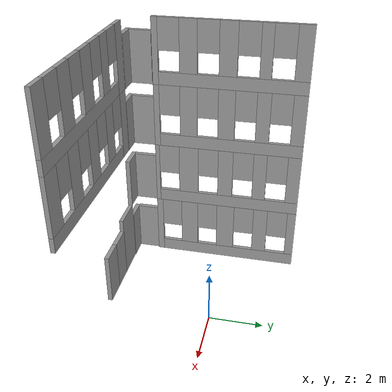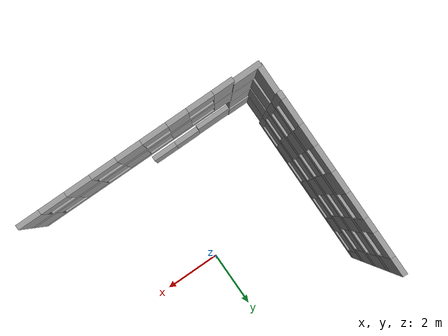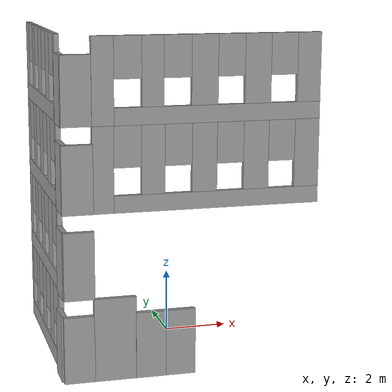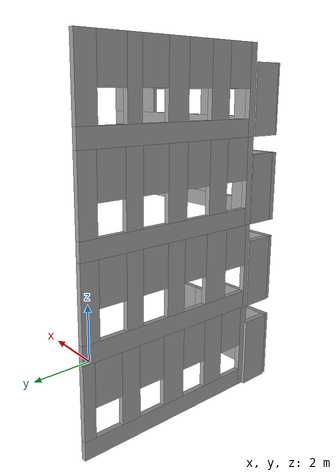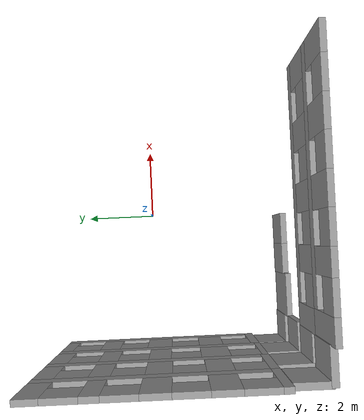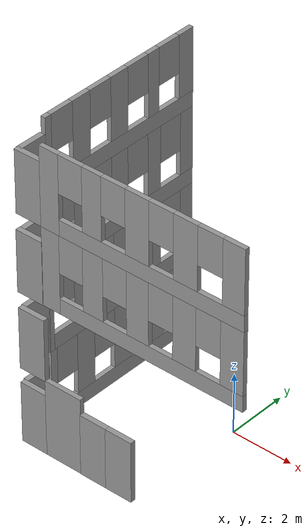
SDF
<sdf version="1.7">
 <model name="domitory">
  <pose>0.765108 -0.598707 0 0 -0 0</pose>
  <link name="Door_0">
   <collision name="Door_0_Collision">
    <geometry><box><size>0.9 0.17 2</size></box></geometry>
    <pose>0 0 1 0 -0 0</pose>
   </collision>
   <visual name="Door_0_Visual">
    <pose>0 0 1 0 -0 0</pose>
    <geometry><box><size>0.9 0.17 2</size></box></geometry>
    <material>
     <script><uri>file://media/materials/scripts/gazebo.material</uri><name>Gazebo/Grey</name></script>
    </material>
   </visual>
   <pose>-2.25511 -3.31129 0 0 -0 0</pose>
  </link>
  <link name="Door_1">
   <collision name="Door_1_Collision">
    <geometry><box><size>0.9 0.17 2</size></box></geometry>
    <pose>0 0 1 0 -0 0</pose>
   </collision>
   <visual name="Door_1_Visual">
    <pose>0 0 1 0 -0 0</pose>
    <geometry><box><size>0.9 0.17 2</size></box></geometry>
    <material>
     <script><uri>file://media/materials/scripts/gazebo.material</uri><name>Gazebo/Grey</name></script>
    </material>
   </visual>
   <pose>-1.36511 -3.31129 0 0 -0 0</pose>
  </link>
  <link name="Door_10">
   <collision name="Door_10_Collision">
    <geometry><box><size>0.9 0.17 2</size></box></geometry>
    <pose>0 0 1 0 -0 0</pose>
   </collision>
   <visual name="Door_10_Visual">
    <pose>0 0 1 0 -0 0</pose>
    <geometry><box><size>0.9 0.17 2</size></box></geometry>
    <material>
     <script><uri>file://media/materials/scripts/gazebo.material</uri><name>Gazebo/Grey</name></script>
    </material>
   </visual>
   <pose>-4.35997 -3.32416 2.5 0 -0 0</pose>
  </link>
  <link name="Door_11">
   <collision name="Door_11_Collision">
    <geometry><box><size>0.9 0.17 2</size></box></geometry>
    <pose>0 0 1 0 -0 0</pose>
   </collision>
   <visual name="Door_11_Visual">
    <pose>0 0 1 0 -0 0</pose>
    <geometry><box><size>0.9 0.17 2</size></box></geometry>
    <material>
     <script><uri>file://media/materials/scripts/gazebo.material</uri><name>Gazebo/Grey</name></script>
    </material>
   </visual>
   <pose>-4.75143 -2.81388 2.5 0 0 -1.56498</pose>
  </link>
  <link name="Door_14">
   <collision name="Door_14_Collision">
    <geometry><box><size>0.9 0.17 2</size></box></geometry>
    <pose>0 0 1 0 -0 0</pose>
   </collision>
   <visual name="Door_14_Visual">
    <pose>0 0 1 0 -0 0</pose>
    <geometry><box><size>0.9 0.17 2</size></box></geometry>
    <material>
     <script><uri>file://media/materials/scripts/gazebo.material</uri><name>Gazebo/Grey</name></script>
    </material>
   </visual>
   <pose>-4.372 -3.31425 5 0 -0 0</pose>
  </link>
  <link name="Door_15">
   <collision name="Door_15_Collision">
    <geometry><box><size>0.9 0.17 2</size></box></geometry>
    <pose>0 0 1 0 -0 0</pose>
   </collision>
   <visual name="Door_15_Visual">
    <pose>0 0 1 0 -0 0</pose>
    <geometry><box><size>0.9 0.17 2</size></box></geometry>
    <material>
     <script><uri>file://media/materials/scripts/gazebo.material</uri><name>Gazebo/Grey</name></script>
    </material>
   </visual>
   <pose>-4.73404 -2.82147 5 0 0 -1.55925</pose>
  </link>
  <link name="Door_18">
   <collision name="Door_18_Collision">
    <geometry><box><size>0.9 0.17 2</size></box></geometry>
    <pose>0 0 1 0 -0 0</pose>
   </collision>
   <visual name="Door_18_Visual">
    <pose>0 0 1 0 -0 0</pose>
    <geometry><box><size>0.9 0.17 2</size></box></geometry>
    <material>
     <script><uri>file://media/materials/scripts/gazebo.material</uri><name>Gazebo/Grey</name></script>
    </material>
   </visual>
   <pose>-4.36107 -3.29465 7.5 0 -0 0</pose>
  </link>
  <link name="Door_19">
   <collision name="Door_19_Collision">
    <geometry><box><size>0.9 0.17 2</size></box></geometry>
    <pose>0 0 1 0 -0 0</pose>
   </collision>
   <visual name="Door_19_Visual">
    <pose>0 0 1 0 -0 0</pose>
    <geometry><box><size>0.9 0.17 2</size></box></geometry>
    <material>
     <script><uri>file://media/materials/scripts/gazebo.material</uri><name>Gazebo/Grey</name></script>
    </material>
   </visual>
   <pose>-4.7454 -2.84964 7.5 0 -0 -1.5754</pose>
  </link>
  <link name="Door_6">
   <collision name="Door_6_Collision">
    <geometry><box><size>0.9 0.17 2</size></box></geometry>
    <pose>0 0 1 0 -0 0</pose>
   </collision>
   <visual name="Door_6_Visual">
    <pose>0 0 1 0 -0 0</pose>
    <geometry><box><size>0.9 0.17 2</size></box></geometry>
    <material>
     <script><uri>file://media/materials/scripts/gazebo.material</uri><name>Gazebo/Grey</name></script>
    </material>
   </visual>
   <pose>-4.37511 -3.30129 0 0 -0 0</pose>
  </link>
  <link name="Door_7">
   <collision name="Door_7_Collision">
    <geometry><box><size>0.9 0.17 2</size></box></geometry>
    <pose>0 0 1 0 -0 0</pose>
   </collision>
   <visual name="Door_7_Visual">
    <pose>0 0 1 0 -0 0</pose>
    <geometry><box><size>0.9 0.17 2</size></box></geometry>
    <material>
     <script><uri>file://media/materials/scripts/gazebo.material</uri><name>Gazebo/Grey</name></script>
    </material>
   </visual>
   <pose>-4.79009 -2.77129 0 0 0 -1.56404</pose>
  </link>
  <link name="Wall_0">
   <collision name="Wall_0_Collision">
    <geometry><box><size>1.25 0.15 2.5</size></box></geometry>
    <pose>0 0 1.25 0 -0 0</pose>
   </collision>
   <visual name="Wall_0_Visual">
    <pose>0 0 1.25 0 -0 0</pose>
    <geometry><box><size>1.25 0.15 2.5</size></box></geometry>
    <material>
     <script><uri>file://media/materials/scripts/gazebo.material</uri><name>Gazebo/Grey</name></script>
     <ambient>1 1 1 1</ambient>
    </material>
    <meta><layer>0</layer></meta>
   </visual>
   <pose>-3.31511 -3.31129 0 0 -0 0</pose>
  </link>
  <link name="Wall_10">
   <pose>-4.72386 0.491179 2.5 0 -0 1.5708</pose>
   <visual name="Wall_10_Visual_0">
    <pose>-2.79234 0 1.25 0 -0 0</pose>
    <geometry><box><size>0.165329 0.15 2.5</size></box></geometry>
    <material>
     <script><uri>file://media/materials/scripts/gazebo.material</uri><name>Gazebo/Grey</name></script>
     <ambient>1 1 1 1</ambient>
    </material>
    <meta><layer>1</layer></meta>
   </visual>
   <collision name="Wall_10_Collision_0">
    <geometry><box><size>0.165329 0.15 2.5</size></box></geometry>
    <pose>-2.79234 0 1.25 0 -0 0</pose>
   </collision>
   <visual name="Wall_10_Visual_1">
    <pose>0.082664 0 0.25 0 -0 0</pose>
    <geometry><box><size>5.58467 0.15 0.5</size></box></geometry>
    <material>
     <script><uri>file://media/materials/scripts/gazebo.material</uri><name>Gazebo/Grey</name></script>
     <ambient>1 1 1 1</ambient>
    </material>
    <meta><layer>1</layer></meta>
   </visual>
   <collision name="Wall_10_Collision_1">
    <geometry><box><size>5.58467 0.15 0.5</size></box></geometry>
    <pose>0.082664 0 0.25 0 -0 0</pose>
   </collision>
   <visual name="Wall_10_Visual_2">
    <pose>-1.52323 0 1.5 0 -0 0</pose>
    <geometry><box><size>0.772881 0.15 2</size></box></geometry>
    <material>
     <script><uri>file://media/materials/scripts/gazebo.material</uri><name>Gazebo/Grey</name></script>
     <ambient>1 1 1 1</ambient>
    </material>
    <meta><layer>1</layer></meta>
   </visual>
   <collision name="Wall_10_Collision_2">
    <geometry><box><size>0.772881 0.15 2</size></box></geometry>
    <pose>-1.52323 0 1.5 0 -0 0</pose>
   </collision>
   <visual name="Wall_10_Visual_3">
    <pose>-0.042872 0 1.5 0 -0 0</pose>
    <geometry><box><size>0.587836 0.15 2</size></box></geometry>
    <material>
     <script><uri>file://media/materials/scripts/gazebo.material</uri><name>Gazebo/Grey</name></script>
     <ambient>1 1 1 1</ambient>
    </material>
    <meta><layer>1</layer></meta>
   </visual>
   <collision name="Wall_10_Collision_3">
    <geometry><box><size>0.587836 0.15 2</size></box></geometry>
    <pose>-0.042872 0 1.5 0 -0 0</pose>
   </collision>
   <visual name="Wall_10_Visual_4">
    <pose>1.31027 0 1.5 0 -0 0</pose>
    <geometry><box><size>0.518445 0.15 2</size></box></geometry>
    <material>
     <script><uri>file://media/materials/scripts/gazebo.material</uri><name>Gazebo/Grey</name></script>
     <ambient>1 1 1 1</ambient>
    </material>
    <meta><layer>1</layer></meta>
   </visual>
   <collision name="Wall_10_Collision_4">
    <geometry><box><size>0.518445 0.15 2</size></box></geometry>
    <pose>1.31027 0 1.5 0 -0 0</pose>
   </collision>
   <visual name="Wall_10_Visual_5">
    <pose>2.62225 0 1.5 0 -0 0</pose>
    <geometry><box><size>0.505509 0.15 2</size></box></geometry>
    <material>
     <script><uri>file://media/materials/scripts/gazebo.material</uri><name>Gazebo/Grey</name></script>
     <ambient>1 1 1 1</ambient>
    </material>
    <meta><layer>1</layer></meta>
   </visual>
   <collision name="Wall_10_Collision_5">
    <geometry><box><size>0.505509 0.15 2</size></box></geometry>
    <pose>2.62225 0 1.5 0 -0 0</pose>
   </collision>
   <visual name="Wall_10_Visual_6">
    <pose>-2.30967 0 1.9 0 -0 0</pose>
    <geometry><box><size>0.8 0.15 1.2</size></box></geometry>
    <material>
     <script><uri>file://media/materials/scripts/gazebo.material</uri><name>Gazebo/Grey</name></script>
     <ambient>1 1 1 1</ambient>
    </material>
    <meta><layer>1</layer></meta>
   </visual>
   <collision name="Wall_10_Collision_6">
    <geometry><box><size>0.8 0.15 1.2</size></box></geometry>
    <pose>-2.30967 0 1.9 0 -0 0</pose>
   </collision>
   <visual name="Wall_10_Visual_7">
    <pose>-0.73679 0 1.9 0 -0 0</pose>
    <geometry><box><size>0.8 0.15 1.2</size></box></geometry>
    <material>
     <script><uri>file://media/materials/scripts/gazebo.material</uri><name>Gazebo/Grey</name></script>
     <ambient>1 1 1 1</ambient>
    </material>
    <meta><layer>1</layer></meta>
   </visual>
   <collision name="Wall_10_Collision_7">
    <geometry><box><size>0.8 0.15 1.2</size></box></geometry>
    <pose>-0.73679 0 1.9 0 -0 0</pose>
   </collision>
   <visual name="Wall_10_Visual_8">
    <pose>0.651047 0 1.9 0 -0 0</pose>
    <geometry><box><size>0.8 0.15 1.2</size></box></geometry>
    <material>
     <script><uri>file://media/materials/scripts/gazebo.material</uri><name>Gazebo/Grey</name></script>
     <ambient>1 1 1 1</ambient>
    </material>
    <meta><layer>1</layer></meta>
   </visual>
   <collision name="Wall_10_Collision_8">
    <geometry><box><size>0.8 0.15 1.2</size></box></geometry>
    <pose>0.651047 0 1.9 0 -0 0</pose>
   </collision>
   <visual name="Wall_10_Visual_9">
    <pose>1.96949 0 1.9 0 -0 0</pose>
    <geometry><box><size>0.8 0.15 1.2</size></box></geometry>
    <material>
     <script><uri>file://media/materials/scripts/gazebo.material</uri><name>Gazebo/Grey</name></script>
     <ambient>1 1 1 1</ambient>
    </material>
    <meta><layer>1</layer></meta>
   </visual>
   <collision name="Wall_10_Collision_9">
    <geometry><box><size>0.8 0.15 1.2</size></box></geometry>
    <pose>1.96949 0 1.9 0 -0 0</pose>
   </collision>
  </link>
  <link name="Wall_13">
   <pose>-0.565108 -3.31129 5 0 -0 0</pose>
   <visual name="Wall_13_Visual_0">
    <pose>-3.06685 0 1.25 0 -0 0</pose>
    <geometry><box><size>0.616289 0.15 2.5</size></box></geometry>
    <material>
     <script><uri>file://media/materials/scripts/gazebo.material</uri><name>Gazebo/Grey</name></script>
     <ambient>1 1 1 1</ambient>
    </material>
    <meta><layer>2</layer></meta>
   </visual>
   <collision name="Wall_13_Collision_0">
    <geometry><box><size>0.616289 0.15 2.5</size></box></geometry>
    <pose>-3.06685 0 1.25 0 -0 0</pose>
   </collision>
   <visual name="Wall_13_Visual_1">
    <pose>0.308145 0 0.25 0 -0 0</pose>
    <geometry><box><size>6.13371 0.15 0.5</size></box></geometry>
    <material>
     <script><uri>file://media/materials/scripts/gazebo.material</uri><name>Gazebo/Grey</name></script>
     <ambient>1 1 1 1</ambient>
    </material>
    <meta><layer>2</layer></meta>
   </visual>
   <collision name="Wall_13_Collision_1">
    <geometry><box><size>6.13371 0.15 0.5</size></box></geometry>
    <pose>0.308145 0 0.25 0 -0 0</pose>
   </collision>
   <visual name="Wall_13_Visual_2">
    <pose>-1.61451 0 1.5 0 -0 0</pose>
    <geometry><box><size>0.688404 0.15 2</size></box></geometry>
    <material>
     <script><uri>file://media/materials/scripts/gazebo.material</uri><name>Gazebo/Grey</name></script>
     <ambient>1 1 1 1</ambient>
    </material>
    <meta><layer>2</layer></meta>
   </visual>
   <collision name="Wall_13_Collision_2">
    <geometry><box><size>0.688404 0.15 2</size></box></geometry>
    <pose>-1.61451 0 1.5 0 -0 0</pose>
   </collision>
   <visual name="Wall_13_Visual_3">
    <pose>-0.100962 0 1.5 0 -0 0</pose>
    <geometry><box><size>0.738688 0.15 2</size></box></geometry>
    <material>
     <script><uri>file://media/materials/scripts/gazebo.material</uri><name>Gazebo/Grey</name></script>
     <ambient>1 1 1 1</ambient>
    </material>
    <meta><layer>2</layer></meta>
   </visual>
   <collision name="Wall_13_Collision_3">
    <geometry><box><size>0.738688 0.15 2</size></box></geometry>
    <pose>-0.100962 0 1.5 0 -0 0</pose>
   </collision>
   <visual name="Wall_13_Visual_4">
    <pose>1.44778 0 1.5 0 -0 0</pose>
    <geometry><box><size>0.758802 0.15 2</size></box></geometry>
    <material>
     <script><uri>file://media/materials/scripts/gazebo.material</uri><name>Gazebo/Grey</name></script>
     <ambient>1 1 1 1</ambient>
    </material>
    <meta><layer>2</layer></meta>
   </visual>
   <collision name="Wall_13_Collision_4">
    <geometry><box><size>0.758802 0.15 2</size></box></geometry>
    <pose>1.44778 0 1.5 0 -0 0</pose>
   </collision>
   <visual name="Wall_13_Visual_5">
    <pose>3.00109 0 1.5 0 -0 0</pose>
    <geometry><box><size>0.747816 0.15 2</size></box></geometry>
    <material>
     <script><uri>file://media/materials/scripts/gazebo.material</uri><name>Gazebo/Grey</name></script>
     <ambient>1 1 1 1</ambient>
    </material>
    <meta><layer>2</layer></meta>
   </visual>
   <collision name="Wall_13_Collision_5">
    <geometry><box><size>0.747816 0.15 2</size></box></geometry>
    <pose>3.00109 0 1.5 0 -0 0</pose>
   </collision>
   <visual name="Wall_13_Visual_6">
    <pose>-2.35871 0 1.9 0 -0 0</pose>
    <geometry><box><size>0.8 0.15 1.2</size></box></geometry>
    <material>
     <script><uri>file://media/materials/scripts/gazebo.material</uri><name>Gazebo/Grey</name></script>
     <ambient>1 1 1 1</ambient>
    </material>
    <meta><layer>2</layer></meta>
   </visual>
   <collision name="Wall_13_Collision_6">
    <geometry><box><size>0.8 0.15 1.2</size></box></geometry>
    <pose>-2.35871 0 1.9 0 -0 0</pose>
   </collision>
   <visual name="Wall_13_Visual_7">
    <pose>-0.870307 0 1.9 0 -0 0</pose>
    <geometry><box><size>0.8 0.15 1.2</size></box></geometry>
    <material>
     <script><uri>file://media/materials/scripts/gazebo.material</uri><name>Gazebo/Grey</name></script>
     <ambient>1 1 1 1</ambient>
    </material>
    <meta><layer>2</layer></meta>
   </visual>
   <collision name="Wall_13_Collision_7">
    <geometry><box><size>0.8 0.15 1.2</size></box></geometry>
    <pose>-0.870307 0 1.9 0 -0 0</pose>
   </collision>
   <visual name="Wall_13_Visual_8">
    <pose>0.668382 0 1.9 0 -0 0</pose>
    <geometry><box><size>0.8 0.15 1.2</size></box></geometry>
    <material>
     <script><uri>file://media/materials/scripts/gazebo.material</uri><name>Gazebo/Grey</name></script>
     <ambient>1 1 1 1</ambient>
    </material>
    <meta><layer>2</layer></meta>
   </visual>
   <collision name="Wall_13_Collision_8">
    <geometry><box><size>0.8 0.15 1.2</size></box></geometry>
    <pose>0.668382 0 1.9 0 -0 0</pose>
   </collision>
   <visual name="Wall_13_Visual_9">
    <pose>2.22718 0 1.9 0 -0 0</pose>
    <geometry><box><size>0.8 0.15 1.2</size></box></geometry>
    <material>
     <script><uri>file://media/materials/scripts/gazebo.material</uri><name>Gazebo/Grey</name></script>
     <ambient>1 1 1 1</ambient>
    </material>
    <meta><layer>2</layer></meta>
   </visual>
   <collision name="Wall_13_Collision_9">
    <geometry><box><size>0.8 0.15 1.2</size></box></geometry>
    <pose>2.22718 0 1.9 0 -0 0</pose>
   </collision>
  </link>
  <link name="Wall_15">
   <pose>-4.72386 0.491179 5 0 -0 1.5708</pose>
   <visual name="Wall_15_Visual_0">
    <pose>-2.76355 0 1.25 0 -0 0</pose>
    <geometry><box><size>0.222893 0.15 2.5</size></box></geometry>
    <material>
     <script><uri>file://media/materials/scripts/gazebo.material</uri><name>Gazebo/Grey</name></script>
     <ambient>1 1 1 1</ambient>
    </material>
    <meta><layer>2</layer></meta>
   </visual>
   <collision name="Wall_15_Collision_0">
    <geometry><box><size>0.222893 0.15 2.5</size></box></geometry>
    <pose>-2.76355 0 1.25 0 -0 0</pose>
   </collision>
   <visual name="Wall_15_Visual_1">
    <pose>0.111447 0 0.25 0 -0 0</pose>
    <geometry><box><size>5.52711 0.15 0.5</size></box></geometry>
    <material>
     <script><uri>file://media/materials/scripts/gazebo.material</uri><name>Gazebo/Grey</name></script>
     <ambient>1 1 1 1</ambient>
    </material>
    <meta><layer>2</layer></meta>
   </visual>
   <collision name="Wall_15_Collision_1">
    <geometry><box><size>5.52711 0.15 0.5</size></box></geometry>
    <pose>0.111447 0 0.25 0 -0 0</pose>
   </collision>
   <visual name="Wall_15_Visual_2">
    <pose>-1.51794 0 1.5 0 -0 0</pose>
    <geometry><box><size>0.668331 0.15 2</size></box></geometry>
    <material>
     <script><uri>file://media/materials/scripts/gazebo.material</uri><name>Gazebo/Grey</name></script>
     <ambient>1 1 1 1</ambient>
    </material>
    <meta><layer>2</layer></meta>
   </visual>
   <collision name="Wall_15_Collision_2">
    <geometry><box><size>0.668331 0.15 2</size></box></geometry>
    <pose>-1.51794 0 1.5 0 -0 0</pose>
   </collision>
   <visual name="Wall_15_Visual_3">
    <pose>-0.064905 0 1.5 0 -0 0</pose>
    <geometry><box><size>0.637741 0.15 2</size></box></geometry>
    <material>
     <script><uri>file://media/materials/scripts/gazebo.material</uri><name>Gazebo/Grey</name></script>
     <ambient>1 1 1 1</ambient>
    </material>
    <meta><layer>2</layer></meta>
   </visual>
   <collision name="Wall_15_Collision_3">
    <geometry><box><size>0.637741 0.15 2</size></box></geometry>
    <pose>-0.064905 0 1.5 0 -0 0</pose>
   </collision>
   <visual name="Wall_15_Visual_4">
    <pose>1.31166 0 1.5 0 -0 0</pose>
    <geometry><box><size>0.51538 0.15 2</size></box></geometry>
    <material>
     <script><uri>file://media/materials/scripts/gazebo.material</uri><name>Gazebo/Grey</name></script>
     <ambient>1 1 1 1</ambient>
    </material>
    <meta><layer>2</layer></meta>
   </visual>
   <collision name="Wall_15_Collision_4">
    <geometry><box><size>0.51538 0.15 2</size></box></geometry>
    <pose>1.31166 0 1.5 0 -0 0</pose>
   </collision>
   <visual name="Wall_15_Visual_5">
    <pose>2.62217 0 1.5 0 -0 0</pose>
    <geometry><box><size>0.505655 0.15 2</size></box></geometry>
    <material>
     <script><uri>file://media/materials/scripts/gazebo.material</uri><name>Gazebo/Grey</name></script>
     <ambient>1 1 1 1</ambient>
    </material>
    <meta><layer>2</layer></meta>
   </visual>
   <collision name="Wall_15_Collision_5">
    <geometry><box><size>0.505655 0.15 2</size></box></geometry>
    <pose>2.62217 0 1.5 0 -0 0</pose>
   </collision>
   <visual name="Wall_15_Visual_6">
    <pose>-2.25211 0 1.9 0 -0 0</pose>
    <geometry><box><size>0.8 0.15 1.2</size></box></geometry>
    <material>
     <script><uri>file://media/materials/scripts/gazebo.material</uri><name>Gazebo/Grey</name></script>
     <ambient>1 1 1 1</ambient>
    </material>
    <meta><layer>2</layer></meta>
   </visual>
   <collision name="Wall_15_Collision_6">
    <geometry><box><size>0.8 0.15 1.2</size></box></geometry>
    <pose>-2.25211 0 1.9 0 -0 0</pose>
   </collision>
   <visual name="Wall_15_Visual_7">
    <pose>-0.783776 0 1.9 0 -0 0</pose>
    <geometry><box><size>0.8 0.15 1.2</size></box></geometry>
    <material>
     <script><uri>file://media/materials/scripts/gazebo.material</uri><name>Gazebo/Grey</name></script>
     <ambient>1 1 1 1</ambient>
    </material>
    <meta><layer>2</layer></meta>
   </visual>
   <collision name="Wall_15_Collision_7">
    <geometry><box><size>0.8 0.15 1.2</size></box></geometry>
    <pose>-0.783776 0 1.9 0 -0 0</pose>
   </collision>
   <visual name="Wall_15_Visual_8">
    <pose>0.653965 0 1.9 0 -0 0</pose>
    <geometry><box><size>0.8 0.15 1.2</size></box></geometry>
    <material>
     <script><uri>file://media/materials/scripts/gazebo.material</uri><name>Gazebo/Grey</name></script>
     <ambient>1 1 1 1</ambient>
    </material>
    <meta><layer>2</layer></meta>
   </visual>
   <collision name="Wall_15_Collision_8">
    <geometry><box><size>0.8 0.15 1.2</size></box></geometry>
    <pose>0.653965 0 1.9 0 -0 0</pose>
   </collision>
   <visual name="Wall_15_Visual_9">
    <pose>1.96934 0 1.9 0 -0 0</pose>
    <geometry><box><size>0.8 0.15 1.2</size></box></geometry>
    <material>
     <script><uri>file://media/materials/scripts/gazebo.material</uri><name>Gazebo/Grey</name></script>
     <ambient>1 1 1 1</ambient>
    </material>
    <meta><layer>2</layer></meta>
   </visual>
   <collision name="Wall_15_Collision_9">
    <geometry><box><size>0.8 0.15 1.2</size></box></geometry>
    <pose>1.96934 0 1.9 0 -0 0</pose>
   </collision>
  </link>
  <link name="Wall_18">
   <pose>-0.565108 -3.31129 7.5 0 -0 0</pose>
   <visual name="Wall_18_Visual_0">
    <pose>-3.0564 0 1.25 0 -0 0</pose>
    <geometry><box><size>0.637196 0.15 2.5</size></box></geometry>
    <material>
     <script><uri>file://media/materials/scripts/gazebo.material</uri><name>Gazebo/Grey</name></script>
     <ambient>1 1 1 1</ambient>
    </material>
    <meta><layer>3</layer></meta>
   </visual>
   <collision name="Wall_18_Collision_0">
    <geometry><box><size>0.637196 0.15 2.5</size></box></geometry>
    <pose>-3.0564 0 1.25 0 -0 0</pose>
   </collision>
   <visual name="Wall_18_Visual_1">
    <pose>0.318598 0 0.25 0 -0 0</pose>
    <geometry><box><size>6.1128 0.15 0.5</size></box></geometry>
    <material>
     <script><uri>file://media/materials/scripts/gazebo.material</uri><name>Gazebo/Grey</name></script>
     <ambient>1 1 1 1</ambient>
    </material>
    <meta><layer>3</layer></meta>
   </visual>
   <collision name="Wall_18_Collision_1">
    <geometry><box><size>6.1128 0.15 0.5</size></box></geometry>
    <pose>0.318598 0 0.25 0 -0 0</pose>
   </collision>
   <visual name="Wall_18_Visual_2">
    <pose>-1.61668 0 1.5 0 -0 0</pose>
    <geometry><box><size>0.642241 0.15 2</size></box></geometry>
    <material>
     <script><uri>file://media/materials/scripts/gazebo.material</uri><name>Gazebo/Grey</name></script>
     <ambient>1 1 1 1</ambient>
    </material>
    <meta><layer>3</layer></meta>
   </visual>
   <collision name="Wall_18_Collision_2">
    <geometry><box><size>0.642241 0.15 2</size></box></geometry>
    <pose>-1.61668 0 1.5 0 -0 0</pose>
   </collision>
   <visual name="Wall_18_Visual_3">
    <pose>-0.104656 0 1.5 0 -0 0</pose>
    <geometry><box><size>0.781813 0.15 2</size></box></geometry>
    <material>
     <script><uri>file://media/materials/scripts/gazebo.material</uri><name>Gazebo/Grey</name></script>
     <ambient>1 1 1 1</ambient>
    </material>
    <meta><layer>3</layer></meta>
   </visual>
   <collision name="Wall_18_Collision_3">
    <geometry><box><size>0.781813 0.15 2</size></box></geometry>
    <pose>-0.104656 0 1.5 0 -0 0</pose>
   </collision>
   <visual name="Wall_18_Visual_4">
    <pose>1.47716 0 1.5 0 -0 0</pose>
    <geometry><box><size>0.781813 0.15 2</size></box></geometry>
    <material>
     <script><uri>file://media/materials/scripts/gazebo.material</uri><name>Gazebo/Grey</name></script>
     <ambient>1 1 1 1</ambient>
    </material>
    <meta><layer>3</layer></meta>
   </visual>
   <collision name="Wall_18_Collision_4">
    <geometry><box><size>0.781813 0.15 2</size></box></geometry>
    <pose>1.47716 0 1.5 0 -0 0</pose>
   </collision>
   <visual name="Wall_18_Visual_5">
    <pose>3.02153 0 1.5 0 -0 0</pose>
    <geometry><box><size>0.706936 0.15 2</size></box></geometry>
    <material>
     <script><uri>file://media/materials/scripts/gazebo.material</uri><name>Gazebo/Grey</name></script>
     <ambient>1 1 1 1</ambient>
    </material>
    <meta><layer>3</layer></meta>
   </visual>
   <collision name="Wall_18_Collision_5">
    <geometry><box><size>0.706936 0.15 2</size></box></geometry>
    <pose>3.02153 0 1.5 0 -0 0</pose>
   </collision>
   <visual name="Wall_18_Visual_6">
    <pose>-2.3378 0 1.9 0 -0 0</pose>
    <geometry><box><size>0.8 0.15 1.2</size></box></geometry>
    <material>
     <script><uri>file://media/materials/scripts/gazebo.material</uri><name>Gazebo/Grey</name></script>
     <ambient>1 1 1 1</ambient>
    </material>
    <meta><layer>3</layer></meta>
   </visual>
   <collision name="Wall_18_Collision_6">
    <geometry><box><size>0.8 0.15 1.2</size></box></geometry>
    <pose>-2.3378 0 1.9 0 -0 0</pose>
   </collision>
   <visual name="Wall_18_Visual_7">
    <pose>-0.895563 0 1.9 0 -0 0</pose>
    <geometry><box><size>0.8 0.15 1.2</size></box></geometry>
    <material>
     <script><uri>file://media/materials/scripts/gazebo.material</uri><name>Gazebo/Grey</name></script>
     <ambient>1 1 1 1</ambient>
    </material>
    <meta><layer>3</layer></meta>
   </visual>
   <collision name="Wall_18_Collision_7">
    <geometry><box><size>0.8 0.15 1.2</size></box></geometry>
    <pose>-0.895563 0 1.9 0 -0 0</pose>
   </collision>
   <visual name="Wall_18_Visual_8">
    <pose>0.686251 0 1.9 0 -0 0</pose>
    <geometry><box><size>0.8 0.15 1.2</size></box></geometry>
    <material>
     <script><uri>file://media/materials/scripts/gazebo.material</uri><name>Gazebo/Grey</name></script>
     <ambient>1 1 1 1</ambient>
    </material>
    <meta><layer>3</layer></meta>
   </visual>
   <collision name="Wall_18_Collision_8">
    <geometry><box><size>0.8 0.15 1.2</size></box></geometry>
    <pose>0.686251 0 1.9 0 -0 0</pose>
   </collision>
   <visual name="Wall_18_Visual_9">
    <pose>2.26806 0 1.9 0 -0 0</pose>
    <geometry><box><size>0.8 0.15 1.2</size></box></geometry>
    <material>
     <script><uri>file://media/materials/scripts/gazebo.material</uri><name>Gazebo/Grey</name></script>
     <ambient>1 1 1 1</ambient>
    </material>
    <meta><layer>3</layer></meta>
   </visual>
   <collision name="Wall_18_Collision_9">
    <geometry><box><size>0.8 0.15 1.2</size></box></geometry>
    <pose>2.26806 0 1.9 0 -0 0</pose>
   </collision>
  </link>
  <link name="Wall_20">
   <pose>-4.72386 0.491179 7.5 0 -0 1.5708</pose>
   <visual name="Wall_20_Visual_0">
    <pose>-2.76322 0 1.25 0 -0 0</pose>
    <geometry><box><size>0.223554 0.15 2.5</size></box></geometry>
    <material>
     <script><uri>file://media/materials/scripts/gazebo.material</uri><name>Gazebo/Grey</name></script>
     <ambient>1 1 1 1</ambient>
    </material>
    <meta><layer>3</layer></meta>
   </visual>
   <collision name="Wall_20_Collision_0">
    <geometry><box><size>0.223554 0.15 2.5</size></box></geometry>
    <pose>-2.76322 0 1.25 0 -0 0</pose>
   </collision>
   <visual name="Wall_20_Visual_1">
    <pose>0.111777 0 0.25 0 -0 0</pose>
    <geometry><box><size>5.52645 0.15 0.5</size></box></geometry>
    <material>
     <script><uri>file://media/materials/scripts/gazebo.material</uri><name>Gazebo/Grey</name></script>
     <ambient>1 1 1 1</ambient>
    </material>
    <meta><layer>3</layer></meta>
   </visual>
   <collision name="Wall_20_Collision_1">
    <geometry><box><size>5.52645 0.15 0.5</size></box></geometry>
    <pose>0.111777 0 0.25 0 -0 0</pose>
   </collision>
   <visual name="Wall_20_Visual_2">
    <pose>-1.51869 0 1.5 0 -0 0</pose>
    <geometry><box><size>0.665503 0.15 2</size></box></geometry>
    <material>
     <script><uri>file://media/materials/scripts/gazebo.material</uri><name>Gazebo/Grey</name></script>
     <ambient>1 1 1 1</ambient>
    </material>
    <meta><layer>3</layer></meta>
   </visual>
   <collision name="Wall_20_Collision_2">
    <geometry><box><size>0.665503 0.15 2</size></box></geometry>
    <pose>-1.51869 0 1.5 0 -0 0</pose>
   </collision>
   <visual name="Wall_20_Visual_3">
    <pose>-0.053191 0 1.5 0 -0 0</pose>
    <geometry><box><size>0.665503 0.15 2</size></box></geometry>
    <material>
     <script><uri>file://media/materials/scripts/gazebo.material</uri><name>Gazebo/Grey</name></script>
     <ambient>1 1 1 1</ambient>
    </material>
    <meta><layer>3</layer></meta>
   </visual>
   <collision name="Wall_20_Collision_3">
    <geometry><box><size>0.665503 0.15 2</size></box></geometry>
    <pose>-0.053191 0 1.5 0 -0 0</pose>
   </collision>
   <visual name="Wall_20_Visual_4">
    <pose>1.296 0 1.5 0 -0 0</pose>
    <geometry><box><size>0.432884 0.15 2</size></box></geometry>
    <material>
     <script><uri>file://media/materials/scripts/gazebo.material</uri><name>Gazebo/Grey</name></script>
     <ambient>1 1 1 1</ambient>
    </material>
    <meta><layer>3</layer></meta>
   </visual>
   <collision name="Wall_20_Collision_4">
    <geometry><box><size>0.432884 0.15 2</size></box></geometry>
    <pose>1.296 0 1.5 0 -0 0</pose>
   </collision>
   <visual name="Wall_20_Visual_5">
    <pose>2.59372 0 1.5 0 -0 0</pose>
    <geometry><box><size>0.562556 0.15 2</size></box></geometry>
    <material>
     <script><uri>file://media/materials/scripts/gazebo.material</uri><name>Gazebo/Grey</name></script>
     <ambient>1 1 1 1</ambient>
    </material>
    <meta><layer>3</layer></meta>
   </visual>
   <collision name="Wall_20_Collision_5">
    <geometry><box><size>0.562556 0.15 2</size></box></geometry>
    <pose>2.59372 0 1.5 0 -0 0</pose>
   </collision>
   <visual name="Wall_20_Visual_6">
    <pose>-2.25145 0 1.9 0 -0 0</pose>
    <geometry><box><size>0.8 0.15 1.2</size></box></geometry>
    <material>
     <script><uri>file://media/materials/scripts/gazebo.material</uri><name>Gazebo/Grey</name></script>
     <ambient>1 1 1 1</ambient>
    </material>
    <meta><layer>3</layer></meta>
   </visual>
   <collision name="Wall_20_Collision_6">
    <geometry><box><size>0.8 0.15 1.2</size></box></geometry>
    <pose>-2.25145 0 1.9 0 -0 0</pose>
   </collision>
   <visual name="Wall_20_Visual_7">
    <pose>-0.785943 0 1.9 0 -0 0</pose>
    <geometry><box><size>0.8 0.15 1.2</size></box></geometry>
    <material>
     <script><uri>file://media/materials/scripts/gazebo.material</uri><name>Gazebo/Grey</name></script>
     <ambient>1 1 1 1</ambient>
    </material>
    <meta><layer>3</layer></meta>
   </visual>
   <collision name="Wall_20_Collision_7">
    <geometry><box><size>0.8 0.15 1.2</size></box></geometry>
    <pose>-0.785943 0 1.9 0 -0 0</pose>
   </collision>
   <visual name="Wall_20_Visual_8">
    <pose>0.679561 0 1.9 0 -0 0</pose>
    <geometry><box><size>0.8 0.15 1.2</size></box></geometry>
    <material>
     <script><uri>file://media/materials/scripts/gazebo.material</uri><name>Gazebo/Grey</name></script>
     <ambient>1 1 1 1</ambient>
    </material>
    <meta><layer>3</layer></meta>
   </visual>
   <collision name="Wall_20_Collision_8">
    <geometry><box><size>0.8 0.15 1.2</size></box></geometry>
    <pose>0.679561 0 1.9 0 -0 0</pose>
   </collision>
   <visual name="Wall_20_Visual_9">
    <pose>1.91244 0 1.9 0 -0 0</pose>
    <geometry><box><size>0.8 0.15 1.2</size></box></geometry>
    <material>
     <script><uri>file://media/materials/scripts/gazebo.material</uri><name>Gazebo/Grey</name></script>
     <ambient>1 1 1 1</ambient>
    </material>
    <meta><layer>3</layer></meta>
   </visual>
   <collision name="Wall_20_Collision_9">
    <geometry><box><size>0.8 0.15 1.2</size></box></geometry>
    <pose>1.91244 0 1.9 0 -0 0</pose>
   </collision>
  </link>
  <link name="Wall_4">
   <pose>-4.72386 0.491179 0 0 -0 1.5708</pose>
   <visual name="Wall_4_Visual_0">
    <pose>-2.75105 0 1.25 0 -0 0</pose>
    <geometry><box><size>0.247902 0.15 2.5</size></box></geometry>
    <material>
     <script><uri>file://media/materials/scripts/gazebo.material</uri><name>Gazebo/Grey</name></script>
     <ambient>1 1 1 1</ambient>
    </material>
    <meta><layer>0</layer></meta>
   </visual>
   <collision name="Wall_4_Collision_0">
    <geometry><box><size>0.247902 0.15 2.5</size></box></geometry>
    <pose>-2.75105 0 1.25 0 -0 0</pose>
   </collision>
   <visual name="Wall_4_Visual_1">
    <pose>0.123951 0 0.25 0 -0 0</pose>
    <geometry><box><size>5.5021 0.15 0.5</size></box></geometry>
    <material>
     <script><uri>file://media/materials/scripts/gazebo.material</uri><name>Gazebo/Grey</name></script>
     <ambient>1 1 1 1</ambient>
    </material>
    <meta><layer>0</layer></meta>
   </visual>
   <collision name="Wall_4_Collision_1">
    <geometry><box><size>5.5021 0.15 0.5</size></box></geometry>
    <pose>0.123951 0 0.25 0 -0 0</pose>
   </collision>
   <visual name="Wall_4_Visual_2">
    <pose>-1.4829 0 1.5 0 -0 0</pose>
    <geometry><box><size>0.688404 0.15 2</size></box></geometry>
    <material>
     <script><uri>file://media/materials/scripts/gazebo.material</uri><name>Gazebo/Grey</name></script>
     <ambient>1 1 1 1</ambient>
    </material>
    <meta><layer>0</layer></meta>
   </visual>
   <collision name="Wall_4_Collision_2">
    <geometry><box><size>0.688404 0.15 2</size></box></geometry>
    <pose>-1.4829 0 1.5 0 -0 0</pose>
   </collision>
   <visual name="Wall_4_Visual_3">
    <pose>0.015565 0 1.5 0 -0 0</pose>
    <geometry><box><size>0.708518 0.15 2</size></box></geometry>
    <material>
     <script><uri>file://media/materials/scripts/gazebo.material</uri><name>Gazebo/Grey</name></script>
     <ambient>1 1 1 1</ambient>
    </material>
    <meta><layer>0</layer></meta>
   </visual>
   <collision name="Wall_4_Collision_3">
    <geometry><box><size>0.708518 0.15 2</size></box></geometry>
    <pose>0.015565 0 1.5 0 -0 0</pose>
   </collision>
   <visual name="Wall_4_Visual_4">
    <pose>1.45368 0 1.5 0 -0 0</pose>
    <geometry><box><size>0.567723 0.15 2</size></box></geometry>
    <material>
     <script><uri>file://media/materials/scripts/gazebo.material</uri><name>Gazebo/Grey</name></script>
     <ambient>1 1 1 1</ambient>
    </material>
    <meta><layer>0</layer></meta>
   </visual>
   <collision name="Wall_4_Collision_4">
    <geometry><box><size>0.567723 0.15 2</size></box></geometry>
    <pose>1.45368 0 1.5 0 -0 0</pose>
   </collision>
   <visual name="Wall_4_Visual_5">
    <pose>2.70627 0 1.5 0 -0 0</pose>
    <geometry><box><size>0.337453 0.15 2</size></box></geometry>
    <material>
     <script><uri>file://media/materials/scripts/gazebo.material</uri><name>Gazebo/Grey</name></script>
     <ambient>1 1 1 1</ambient>
    </material>
    <meta><layer>0</layer></meta>
   </visual>
   <collision name="Wall_4_Collision_5">
    <geometry><box><size>0.337453 0.15 2</size></box></geometry>
    <pose>2.70627 0 1.5 0 -0 0</pose>
   </collision>
   <visual name="Wall_4_Visual_6">
    <pose>-2.2271 0 1.9 0 -0 0</pose>
    <geometry><box><size>0.8 0.15 1.2</size></box></geometry>
    <material>
     <script><uri>file://media/materials/scripts/gazebo.material</uri><name>Gazebo/Grey</name></script>
     <ambient>1 1 1 1</ambient>
    </material>
    <meta><layer>0</layer></meta>
   </visual>
   <collision name="Wall_4_Collision_6">
    <geometry><box><size>0.8 0.15 1.2</size></box></geometry>
    <pose>-2.2271 0 1.9 0 -0 0</pose>
   </collision>
   <visual name="Wall_4_Visual_7">
    <pose>-0.738694 0 1.9 0 -0 0</pose>
    <geometry><box><size>0.8 0.15 1.2</size></box></geometry>
    <material>
     <script><uri>file://media/materials/scripts/gazebo.material</uri><name>Gazebo/Grey</name></script>
     <ambient>1 1 1 1</ambient>
    </material>
    <meta><layer>0</layer></meta>
   </visual>
   <collision name="Wall_4_Collision_7">
    <geometry><box><size>0.8 0.15 1.2</size></box></geometry>
    <pose>-0.738694 0 1.9 0 -0 0</pose>
   </collision>
   <visual name="Wall_4_Visual_8">
    <pose>0.769824 0 1.9 0 -0 0</pose>
    <geometry><box><size>0.8 0.15 1.2</size></box></geometry>
    <material>
     <script><uri>file://media/materials/scripts/gazebo.material</uri><name>Gazebo/Grey</name></script>
     <ambient>1 1 1 1</ambient>
    </material>
    <meta><layer>0</layer></meta>
   </visual>
   <collision name="Wall_4_Collision_8">
    <geometry><box><size>0.8 0.15 1.2</size></box></geometry>
    <pose>0.769824 0 1.9 0 -0 0</pose>
   </collision>
   <visual name="Wall_4_Visual_9">
    <pose>2.13755 0 1.9 0 -0 0</pose>
    <geometry><box><size>0.8 0.15 1.2</size></box></geometry>
    <material>
     <script><uri>file://media/materials/scripts/gazebo.material</uri><name>Gazebo/Grey</name></script>
     <ambient>1 1 1 1</ambient>
    </material>
    <meta><layer>0</layer></meta>
   </visual>
   <collision name="Wall_4_Collision_9">
    <geometry><box><size>0.8 0.15 1.2</size></box></geometry>
    <pose>2.13755 0 1.9 0 -0 0</pose>
   </collision>
  </link>
  <static>1</static>
 </model>
</sdf>
